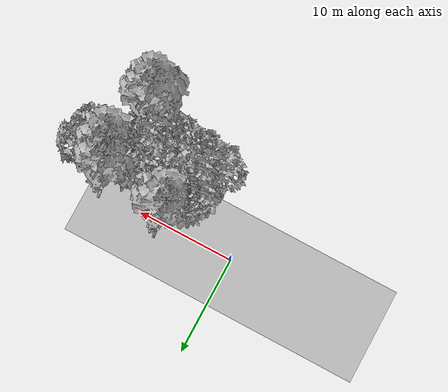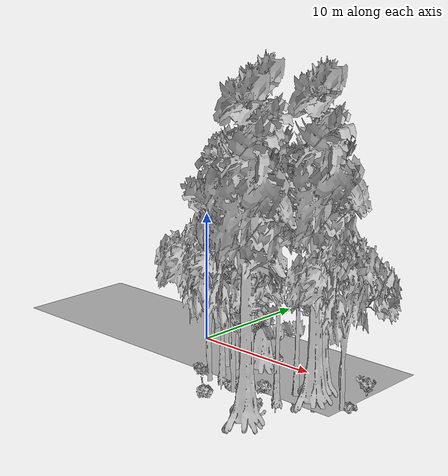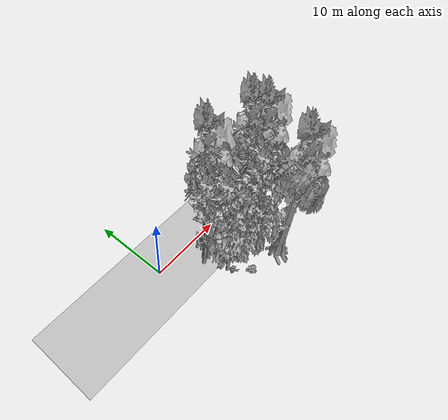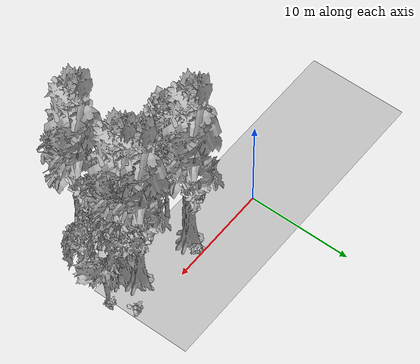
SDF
<sdf version="1.7">
 <world name="default">
  <model name="ground_plane">
   <static>1</static>
   <link name="link">
    <collision name="collision">
     <geometry><plane><normal>0 0 1</normal><size>100 100</size></plane></geometry>
     <surface><contact><ode><min_depth>0.01</min_depth><max_vel>0</max_vel></ode></contact></surface>
    </collision>
    <visual name="grass">
     <cast_shadows>0</cast_shadows>
     <geometry>
      <mesh>
       <scale>0.5814285714285714 0.18142857142857144 0.1</scale>
       <uri>file://grass_plane/meshes/grass_plane.dae</uri>
      </mesh>
     </geometry>
    </visual>
   </link>
  </model>
  <model name="Tree 3">
   <static>1</static>
   <pose>5.476249976549731 -2.4815436524672148 0 1.57079 -0 0</pose>
   <link name="link">
    <collision name="collision">
     <geometry><mesh><scale>3.5 5 3.5</scale><uri>model://tree_9/meshes/tree_9.obj</uri></mesh></geometry>
    </collision>
    <visual name="visual">
     <geometry><mesh><scale>3.5 5 3.5</scale><uri>model://tree_9/meshes/tree_9.obj</uri></mesh></geometry>
    </visual>
   </link>
  </model>
  <model name="Tree 18">
   <static>1</static>
   <pose>6.053985852618446 -4.687670453976763 0 1.57079 -0 0</pose>
   <link name="link">
    <collision name="collision">
     <geometry><mesh><scale>3.5 5 3.5</scale><uri>model://tree_9/meshes/tree_9.obj</uri></mesh></geometry>
    </collision>
    <visual name="visual">
     <geometry><mesh><scale>3.5 5 3.5</scale><uri>model://tree_9/meshes/tree_9.obj</uri></mesh></geometry>
    </visual>
   </link>
  </model>
  <model name="Tree 33">
   <static>1</static>
   <pose>6.900980407644802 -1.467559844220773 0 1.57079 -0 0</pose>
   <link name="link">
    <collision name="collision">
     <geometry><mesh><scale>3.5 5 3.5</scale><uri>model://tree_4/meshes/tree_4.obj</uri></mesh></geometry>
    </collision>
    <visual name="visual">
     <geometry><mesh><scale>3.5 5 3.5</scale><uri>model://tree_4/meshes/tree_4.obj</uri></mesh></geometry>
    </visual>
   </link>
  </model>
  <model name="Tree 105">
   <static>1</static>
   <pose>15.52739055796404 -3.438240505742625 0 1.57079 -0 0</pose>
   <link name="link">
    <collision name="collision">
     <geometry><mesh><scale>3.5 5 3.5</scale><uri>model://tree_2/meshes/tree_2.obj</uri></mesh></geometry>
    </collision>
    <visual name="visual">
     <geometry><mesh><scale>3.5 5 3.5</scale><uri>model://tree_2/meshes/tree_2.obj</uri></mesh></geometry>
    </visual>
   </link>
  </model>
  <model name="Tree 143">
   <static>1</static>
   <pose>12.753008262543588 -2.2611949977245214 0 1.57079 -0 0</pose>
   <link name="link">
    <collision name="collision">
     <geometry><mesh><scale>3.5 5 3.5</scale><uri>model://tree_4/meshes/tree_4.obj</uri></mesh></geometry>
    </collision>
    <visual name="visual">
     <geometry><mesh><scale>3.5 5 3.5</scale><uri>model://tree_4/meshes/tree_4.obj</uri></mesh></geometry>
    </visual>
   </link>
  </model>
  <model name="Tree 241">
   <static>1</static>
   <pose>12.169482000849406 -9.081025484940817 0 1.57079 -0 0</pose>
   <link name="link">
    <collision name="collision">
     <geometry><mesh><scale>3.5 5 3.5</scale><uri>model://tree_4/meshes/tree_4.obj</uri></mesh></geometry>
    </collision>
    <visual name="visual">
     <geometry><mesh><scale>3.5 5 3.5</scale><uri>model://tree_4/meshes/tree_4.obj</uri></mesh></geometry>
    </visual>
   </link>
  </model>
  <model name="Tree 279">
   <static>1</static>
   <pose>5.775230524700945 -2.978185360601607 0 1.57079 -0 0</pose>
   <link name="link">
    <collision name="collision">
     <geometry><mesh><scale>3.5 5 3.5</scale><uri>model://tree_9/meshes/tree_9.obj</uri></mesh></geometry>
    </collision>
    <visual name="visual">
     <geometry><mesh><scale>3.5 5 3.5</scale><uri>model://tree_9/meshes/tree_9.obj</uri></mesh></geometry>
    </visual>
   </link>
  </model>
  <model name="Tree 286">
   <static>1</static>
   <pose>5.843910057443637 -5.871268214193805 0 1.57079 -0 0</pose>
   <link name="link">
    <collision name="collision">
     <geometry><mesh><scale>3.5 5 3.5</scale><uri>model://tree_2/meshes/tree_2.obj</uri></mesh></geometry>
    </collision>
    <visual name="visual">
     <geometry><mesh><scale>3.5 5 3.5</scale><uri>model://tree_2/meshes/tree_2.obj</uri></mesh></geometry>
    </visual>
   </link>
  </model>
  <model name="Tree 354">
   <static>1</static>
   <pose>11.397612779319061 -5.063115354553695 0 1.57079 -0 0</pose>
   <link name="link">
    <collision name="collision">
     <geometry><mesh><scale>3.5 5 3.5</scale><uri>model://tree_9/meshes/tree_9.obj</uri></mesh></geometry>
    </collision>
    <visual name="visual">
     <geometry><mesh><scale>3.5 5 3.5</scale><uri>model://tree_9/meshes/tree_9.obj</uri></mesh></geometry>
    </visual>
   </link>
  </model>
  <model name="Tree 389">
   <static>1</static>
   <pose>4.906024373826199 -3.043116900811599 0 1.57079 -0 0</pose>
   <link name="link">
    <collision name="collision">
     <geometry><mesh><scale>3.5 5 3.5</scale><uri>model://tree_9/meshes/tree_9.obj</uri></mesh></geometry>
    </collision>
    <visual name="visual">
     <geometry><mesh><scale>3.5 5 3.5</scale><uri>model://tree_9/meshes/tree_9.obj</uri></mesh></geometry>
    </visual>
   </link>
  </model>
  <model name="Tree 407">
   <static>1</static>
   <pose>8.365331929290988 -6.144175129197576 0 1.57079 -0 0</pose>
   <link name="link">
    <collision name="collision">
     <geometry><mesh><scale>3.5 5 3.5</scale><uri>model://tree_2/meshes/tree_2.obj</uri></mesh></geometry>
    </collision>
    <visual name="visual">
     <geometry><mesh><scale>3.5 5 3.5</scale><uri>model://tree_2/meshes/tree_2.obj</uri></mesh></geometry>
    </visual>
   </link>
  </model>
  <model name="Tree 440">
   <static>1</static>
   <pose>13.328723323261634 -3.596229228039247 0 1.57079 -0 0</pose>
   <link name="link">
    <collision name="collision">
     <geometry><mesh><scale>3.5 5 3.5</scale><uri>model://tree_4/meshes/tree_4.obj</uri></mesh></geometry>
    </collision>
    <visual name="visual">
     <geometry><mesh><scale>3.5 5 3.5</scale><uri>model://tree_4/meshes/tree_4.obj</uri></mesh></geometry>
    </visual>
   </link>
  </model>
  <model name="Tree 441">
   <static>1</static>
   <pose>11.929115611046981 -3.6426560286301086 0 1.57079 -0 0</pose>
   <link name="link">
    <collision name="collision">
     <geometry><mesh><scale>3.5 5 3.5</scale><uri>model://tree_9/meshes/tree_9.obj</uri></mesh></geometry>
    </collision>
    <visual name="visual">
     <geometry><mesh><scale>3.5 5 3.5</scale><uri>model://tree_9/meshes/tree_9.obj</uri></mesh></geometry>
    </visual>
   </link>
  </model>
  <model name="Bush 65">
   <static>1</static>
   <pose>7.434909561452287 -0.4202770838219134 0 1.57079 -0 0</pose>
   <link name="link">
    <collision name="collision">
     <geometry><mesh><scale>2 2 2</scale><uri>model://bush_3/meshes/bush_3.obj</uri></mesh></geometry>
     <surface><contact><collide_without_contact>false</collide_without_contact></contact></surface>
    </collision>
    <visual name="visual">
     <geometry><mesh><scale>2 2 2</scale><uri>model://bush_3/meshes/bush_3.obj</uri></mesh></geometry>
    </visual>
   </link>
  </model>
  <model name="Bush 85">
   <static>1</static>
   <pose>10.164621322229877 -4.906864378954861 0 1.57079 -0 0</pose>
   <link name="link">
    <collision name="collision">
     <geometry><mesh><scale>2 2 2</scale><uri>model://bush_3/meshes/bush_3.obj</uri></mesh></geometry>
     <surface><contact><collide_without_contact>false</collide_without_contact></contact></surface>
    </collision>
    <visual name="visual">
     <geometry><mesh><scale>2 2 2</scale><uri>model://bush_3/meshes/bush_3.obj</uri></mesh></geometry>
    </visual>
   </link>
  </model>
  <model name="Bush 140">
   <static>1</static>
   <pose>15.84238964992457 -2.9959872937071683 0 1.57079 -0 0</pose>
   <link name="link">
    <collision name="collision">
     <geometry><mesh><scale>2 2 2</scale><uri>model://bush_2/meshes/bush_2.obj</uri></mesh></geometry>
     <surface><contact><collide_without_contact>false</collide_without_contact></contact></surface>
    </collision>
    <visual name="visual">
     <geometry><mesh><scale>2 2 2</scale><uri>model://bush_2/meshes/bush_2.obj</uri></mesh></geometry>
    </visual>
   </link>
  </model>
  <model name="Bush 143">
   <static>1</static>
   <pose>7.725548515188123 -5.704032284721297 0 1.57079 -0 0</pose>
   <link name="link">
    <collision name="collision">
     <geometry><mesh><scale>2 2 2</scale><uri>model://bush_2/meshes/bush_2.obj</uri></mesh></geometry>
     <surface><contact><collide_without_contact>false</collide_without_contact></contact></surface>
    </collision>
    <visual name="visual">
     <geometry><mesh><scale>2 2 2</scale><uri>model://bush_2/meshes/bush_2.obj</uri></mesh></geometry>
    </visual>
   </link>
  </model>
  <model name="Bush 162">
   <static>1</static>
   <pose>7.841997462148655 -8.207306001922273 0 1.57079 -0 0</pose>
   <link name="link">
    <collision name="collision">
     <geometry><mesh><scale>2 2 2</scale><uri>model://bush_3/meshes/bush_3.obj</uri></mesh></geometry>
     <surface><contact><collide_without_contact>false</collide_without_contact></contact></surface>
    </collision>
    <visual name="visual">
     <geometry><mesh><scale>2 2 2</scale><uri>model://bush_3/meshes/bush_3.obj</uri></mesh></geometry>
    </visual>
   </link>
  </model>
  <model name="Bush 178">
   <static>1</static>
   <pose>12.262496449474746 -8.386232922725656 0 1.57079 -0 0</pose>
   <link name="link">
    <collision name="collision">
     <geometry><mesh><scale>2 2 2</scale><uri>model://bush_4/meshes/bush_4.obj</uri></mesh></geometry>
     <surface><contact><collide_without_contact>false</collide_without_contact></contact></surface>
    </collision>
    <visual name="visual">
     <geometry><mesh><scale>2 2 2</scale><uri>model://bush_4/meshes/bush_4.obj</uri></mesh></geometry>
    </visual>
   </link>
  </model>
  <model name="Bush 251">
   <static>1</static>
   <pose>8.567535870804896 -5.485882455407676 0 1.57079 -0 0</pose>
   <link name="link">
    <collision name="collision">
     <geometry><mesh><scale>2 2 2</scale><uri>model://bush_3/meshes/bush_3.obj</uri></mesh></geometry>
     <surface><contact><collide_without_contact>false</collide_without_contact></contact></surface>
    </collision>
    <visual name="visual">
     <geometry><mesh><scale>2 2 2</scale><uri>model://bush_3/meshes/bush_3.obj</uri></mesh></geometry>
    </visual>
   </link>
  </model>
  <model name="Bush 312">
   <static>1</static>
   <pose>5.95157115956264 -6.607923339163547 0 1.57079 -0 0</pose>
   <link name="link">
    <collision name="collision">
     <geometry><mesh><scale>2 2 2</scale><uri>model://bush_5/meshes/bush_5.obj</uri></mesh></geometry>
     <surface><contact><collide_without_contact>false</collide_without_contact></contact></surface>
    </collision>
    <visual name="visual">
     <geometry><mesh><scale>2 2 2</scale><uri>model://bush_5/meshes/bush_5.obj</uri></mesh></geometry>
    </visual>
   </link>
  </model>
  <model name="Bush 313">
   <static>1</static>
   <pose>15.490075525391674 -0.5010650088370756 0 1.57079 -0 0</pose>
   <link name="link">
    <collision name="collision">
     <geometry><mesh><scale>2 2 2</scale><uri>model://bush_0/meshes/bush_0.obj</uri></mesh></geometry>
     <surface><contact><collide_without_contact>false</collide_without_contact></contact></surface>
    </collision>
    <visual name="visual">
     <geometry><mesh><scale>2 2 2</scale><uri>model://bush_0/meshes/bush_0.obj</uri></mesh></geometry>
    </visual>
   </link>
  </model>
 </world>
</sdf>
